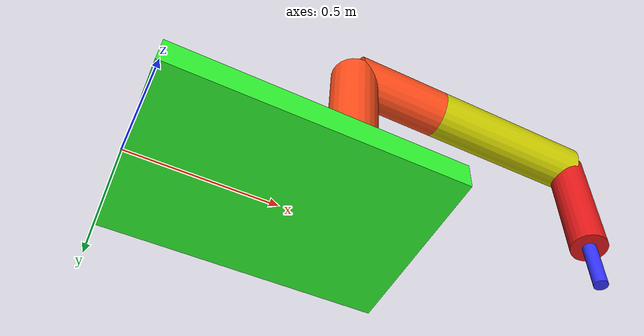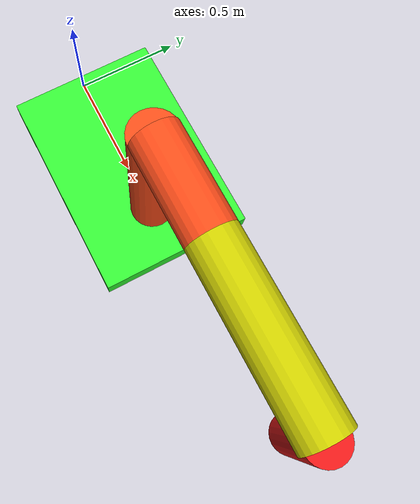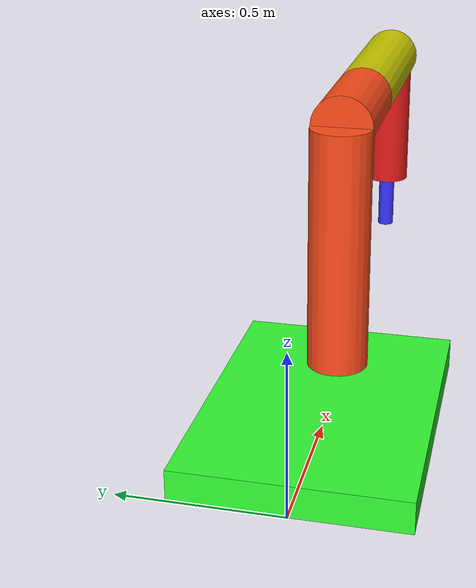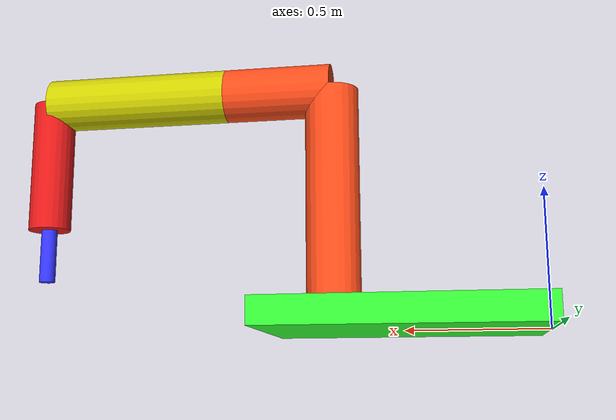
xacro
<?xml version="1.0"?>
<robot xmlns:xacro="http://www.ros.org/wiki/xacro"  name="robot">

    <!-- This is an example of a URDF. -->
    <!-- As we move through the file, new things to note will be pointed out. -->
    <!-- It's not meant an example of GOOD design, but an example of some of the various features of URDF/xacro. -->

    <!-- This will include all the contents of example_include.xacro first. Go check it out! -->
    <xacro:include filename="example_include.xacro" />

    <xacro:property name="body_length" value="0.8" />
    <xacro:property name="body_radius" value="0.1" />

    <xacro:property name="arm_1_length" value="0.4" />
    <xacro:property name="arm_1_radius" value="0.1" />

    <xacro:property name="arm_2_length" value="0.7" />
    <xacro:property name="arm_2_radius" value="0.1" />

    <xacro:property name="arm_3_length" value="0.5" />
    <xacro:property name="arm_3_radius" value="0.08" />

    <xacro:property name="effector_length" value="0.2" />
    <xacro:property name="effector_radius" value="0.03" />

    <!-- This first link called "world" is empty -->
    <link name="world"></link>

    <!-- A simple fixed joint from our empty world link, to our base. -->
    <!-- The base origin is offset from the world origin. -->
    <joint name="base_joint" type="fixed">
        <origin xyz="0.5 0.0 0" rpy="0 0 0"/>
        <parent link="world"/>
        <child link="base_link"/>
    </joint>

    <!-- base_link is a large rectangular plate. Some things to note: -->
    <!-- - We set the visual origin Z to half the box height, so that the link origin sits at the bottom of the box -->
    <!-- - We set the collision to be identical to the visual -->
    <!-- - We specified the colour manually (but still need to enter a name) -->
    <!-- - We specified all the inertial parameters manually -->
    <link name="base_link">
        <visual>
            <origin xyz="0 0 0.05" rpy="0 0 0"/>
            <geometry>
                <box size="1.0 0.7 0.1" />
            </geometry>
            <material name="green">
                <color rgba="0.2 1 0.2 1"/>
            </material>
        </visual>
        <collision>
            <origin xyz="0 0 0.05" rpy="0 0 0"/>
            <geometry>
                <box size="1.0 0.7 0.1" />
            </geometry>
        </collision>
        <inertial>
            <origin xyz="0 0 0.05" rpy="0 0 0"/>
            <mass value="12" />
            <inertia ixx="2.26" ixy="0.0" ixz="0.0" iyy="6.26" iyz="0.0" izz="8.5" />
        </inertial>
    </link>

    <joint name="body_joint" type="fixed">
        <origin xyz="0.25 0 0.10" rpy="0 0 0"/>
        <parent link="base_link"/>
        <child link="body_link"/>
    </joint>

    <link name="body_link">
        <visual>
            <origin xyz="0 0 ${body_length/2}" rpy="0 0 0"/>
            <geometry>
                <cylinder length="${body_length}" radius="${body_radius}" />
            </geometry>
            <material name="orange" />
        </visual>
        <collision>
            <origin xyz="0 0 ${body_length/2}" rpy="0 0 0"/>
            <geometry>
                <cylinder length="${body_length}" radius="${body_radius}" />
            </geometry>
        </collision>
        <xacro:inertial_cylinder mass="1.0" length="${body_length}" radius="${body_radius}">
            <origin xyz="0 0 ${body_length/2}" rpy="0 0 0"/>
        </xacro:inertial_cylinder>
    </link>

    <joint name="arm_1_joint" type="revolute">
        <origin xyz="0.0 0 ${body_length}" rpy="0 0 0"/>
        <parent link="body_link"/>
        <child link="arm_1_link"/>
        <axis xyz="0 0 1"/>
        <limit lower="${-pi/2}" upper="${pi/2}" velocity="100" effort="100"/>
    </joint>

    <link name="arm_1_link">
        <visual>
            <origin xyz="${arm_1_length/2} 0 0" rpy="0 ${pi/2} 0"/>
            <geometry>
                <cylinder length="${arm_1_length}" radius="${arm_1_radius}" />
            </geometry>
            <material name="orange" />
        </visual>
        <collision>
            <origin xyz="${arm_1_length/2} 0 0" rpy="0 ${pi/2} 0"/>
            <geometry>
                <cylinder length="${arm_1_length}" radius="${arm_1_radius}" />
            </geometry>
        </collision>
        <xacro:inertial_cylinder mass="1.0" length="${arm_1_length}" radius="${arm_1_radius}">
            <origin xyz="${arm_1_length/2} 0 0" rpy="0 ${pi/2} 0"/>
        </xacro:inertial_cylinder>
    </link>

    <joint name="arm_2_joint" type="revolute">
        <origin xyz="${arm_1_length} 0 0" rpy="0 0 0"/>
        <parent link="arm_1_link"/>
        <child link="arm_2_link"/>
        <axis xyz="0 0 1"/>
        <limit lower="${-pi/2}" upper="${pi/2}" velocity="100" effort="100"/>
    </joint>

    <link name="arm_2_link">
        <visual>
            <origin xyz="${arm_2_length/2} 0 0" rpy="0 ${pi/2} 0"/>
            <geometry>
                <cylinder length="${arm_2_length}" radius="${arm_2_radius}" />
            </geometry>
            <material name="yellow" />
        </visual>
        <collision>
            <origin xyz="${arm_2_length/2} 0 0" rpy="0 ${pi/2} 0"/>
            <geometry>
                <cylinder length="${arm_2_length}" radius="${arm_2_radius}" />
            </geometry>
        </collision>
        <xacro:inertial_cylinder mass="1.0" length="${arm_2_length}" radius="${arm_2_radius}">
            <origin xyz="${arm_2_length/2} 0 0" rpy="0 ${pi/2} 0"/>
        </xacro:inertial_cylinder>
    </link>

    <joint name="arm_3_joint" type="prismatic">
        <origin xyz="${arm_2_length} 0 0" rpy="${pi} 0 0"/>
        <parent link="arm_2_link"/>
        <child link="arm_3_link"/>
        <axis xyz="0 0 1"/>
        <limit lower="${-arm_3_length}" upper="0" velocity="100" effort="100"/>
    </joint>

    <link name="arm_3_link">
        <visual>
            <origin xyz="0 0 ${arm_3_length/2}" rpy="0 0 0"/>
            <geometry>
                <cylinder length="${arm_3_length}" radius="${arm_3_radius}" />
            </geometry>
            <material name="red" />
        </visual>
        <collision>
            <origin xyz="0 0 ${arm_3_length/2}" rpy="0 0 0"/>
            <geometry>
                <cylinder length="${arm_3_length}" radius="${arm_3_radius}" />
            </geometry>
        </collision>
        <xacro:inertial_cylinder mass="1.0" length="${arm_3_length}" radius="${arm_3_radius}">
            <origin xyz="0 0 ${arm_3_length/2}" rpy="0 0 0"/>
        </xacro:inertial_cylinder>
    </link>

    <joint name="effector_joint" type="fixed">
        <origin xyz="0 0 ${arm_3_length+effector_length}" rpy="0 0 0"/>
        <parent link="arm_3_link"/>
        <child link="effector_link"/>
    </joint>

    <link name="effector_link">
    <visual>
            <origin xyz="0 0 ${-effector_length/2}" rpy="0 0 0"/>
            <geometry>
                <cylinder length="${effector_length}" radius="${effector_radius}" />
            </geometry>
            <material name="blue" />
        </visual>
        <collision>
            <origin xyz="0 0 ${-effector_length/2}" rpy="0 0 0"/>
            <geometry>
                <cylinder length="${effector_length}" radius="${effector_radius}" />
            </geometry>
        </collision>
        <xacro:inertial_cylinder mass="1.0" length="${effector_length}" radius="${effector_radius}">
            <origin xyz="0 0 ${-effector_length/2}" rpy="0 0 0"/>
        </xacro:inertial_cylinder>
    </link>

</robot>

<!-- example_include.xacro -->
<robot xmlns:xacro="http://www.ros.org/wiki/xacro" >

    <!-- This file is not a robot in and of itself, it just contains some useful tags that could be included in any robot -->

    <!-- Specify some colours -->

    <material name="white">
        <color rgba="1 1 1 1"/>
    </material>

    <material name="orange">
        <color rgba="1 0.3 0.1 1"/>
    </material>

    <material name="blue">
        <color rgba="0.2 0.2 1 1"/>
    </material>

    <material name="red">
        <color rgba="0.9 0.1 0.1 1"/>
    </material>

    <material name="yellow">
        <color rgba="0.8 0.8 0.0 1"/>
    </material>

    <!-- Specify some standard inertial calculations https://en.wikipedia.org/wiki/List_of_moments_of_inertia -->
    <!-- These make use of xacro's mathematical functionality -->

    <xacro:macro name="inertial_sphere" params="mass radius *origin">
        <inertial>
            <xacro:insert_block name="origin"/>
            <mass value="${mass}" />
            <inertia ixx="${(2/5) * mass * (radius*radius)}" ixy="0.0" ixz="0.0"
                    iyy="${(2/5) * mass * (radius*radius)}" iyz="0.0"
                    izz="${(2/5) * mass * (radius*radius)}" />
        </inertial>
    </xacro:macro>

    <xacro:macro name="inertial_box" params="mass x y z *origin">
        <inertial>
            <xacro:insert_block name="origin"/>
            <mass value="${mass}" />
            <inertia ixx="${(1/12) * mass * (y*y+z*z)}" ixy="0.0" ixz="0.0"
                    iyy="${(1/12) * mass * (x*x+z*z)}" iyz="0.0"
                    izz="${(1/12) * mass * (x*x+y*y)}" />
        </inertial>
    </xacro:macro>

    <xacro:macro name="inertial_cylinder" params="mass length radius *origin">
        <inertial>
            <xacro:insert_block name="origin"/>
            <mass value="${mass}" />
            <inertia ixx="${(1/12) * mass * (3*radius*radius + length*length)}" ixy="0.0" ixz="0.0"
                    iyy="${(1/12) * mass * (3*radius*radius + length*length)}" iyz="0.0"
                    izz="${(1/2) * mass * (radius*radius)}" />
        </inertial>
    </xacro:macro>

</robot>
